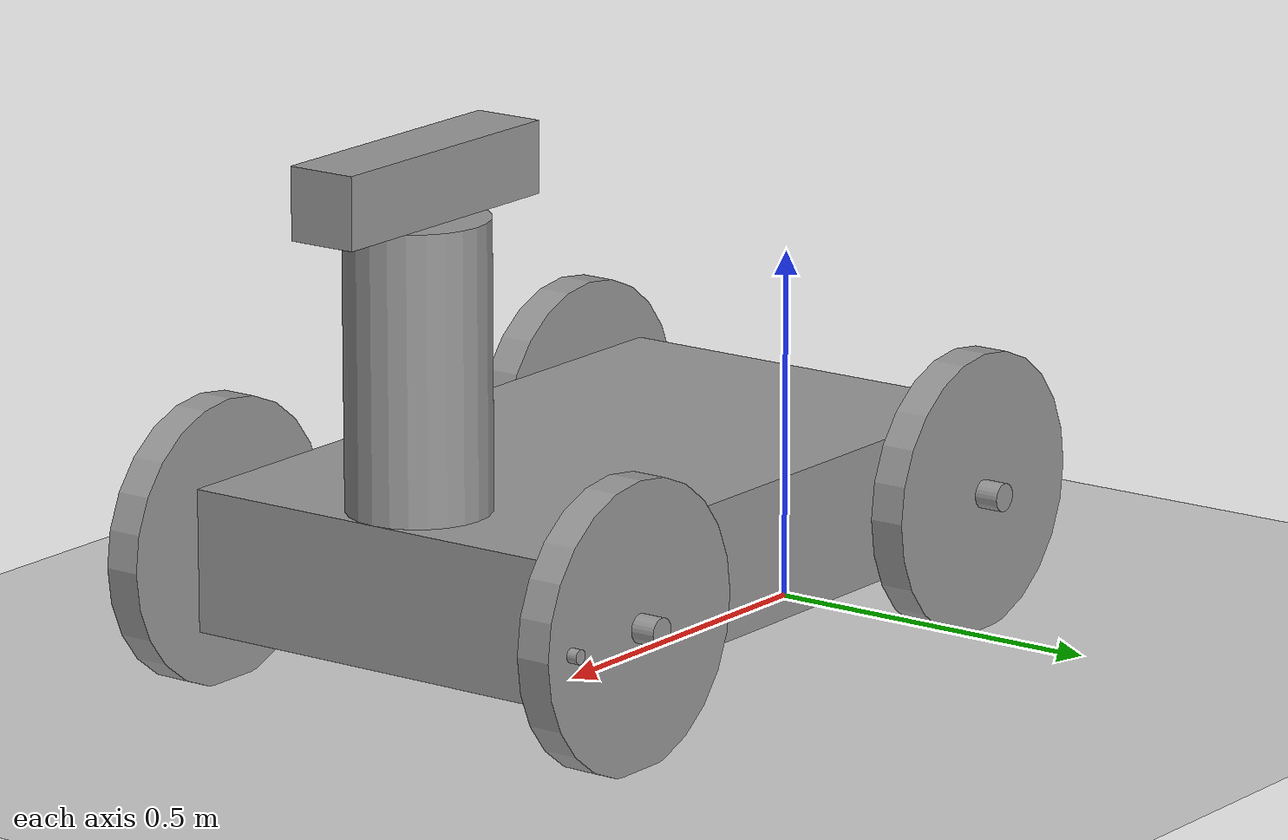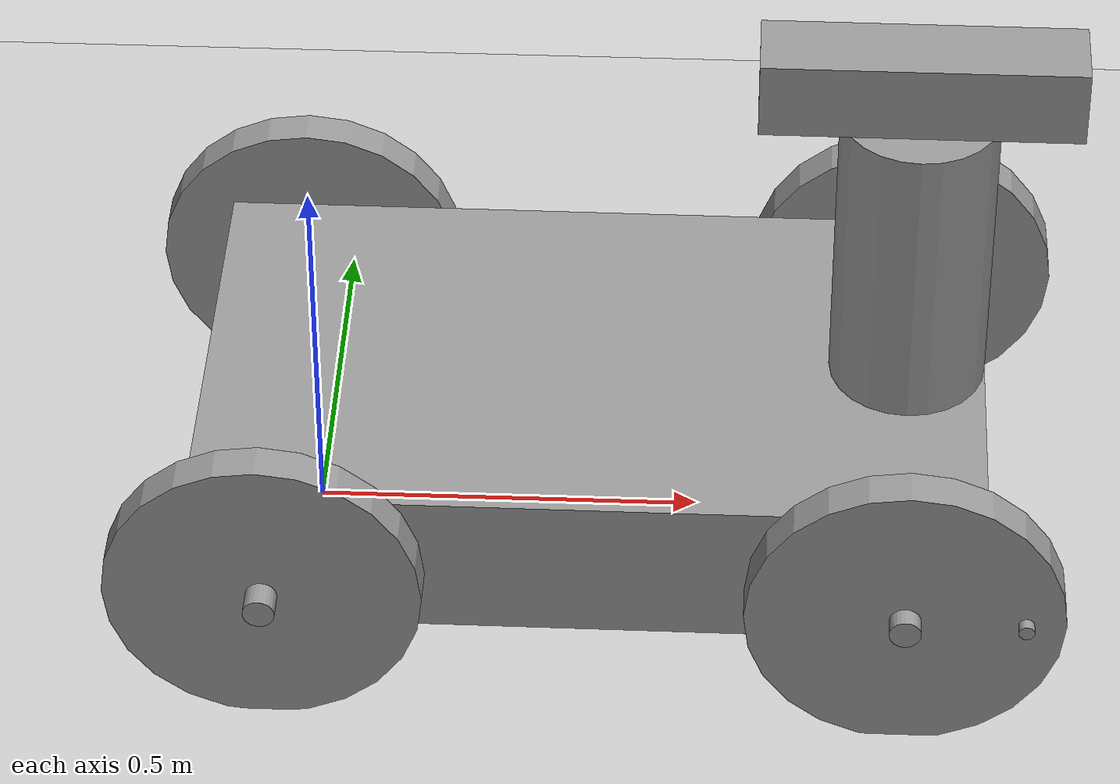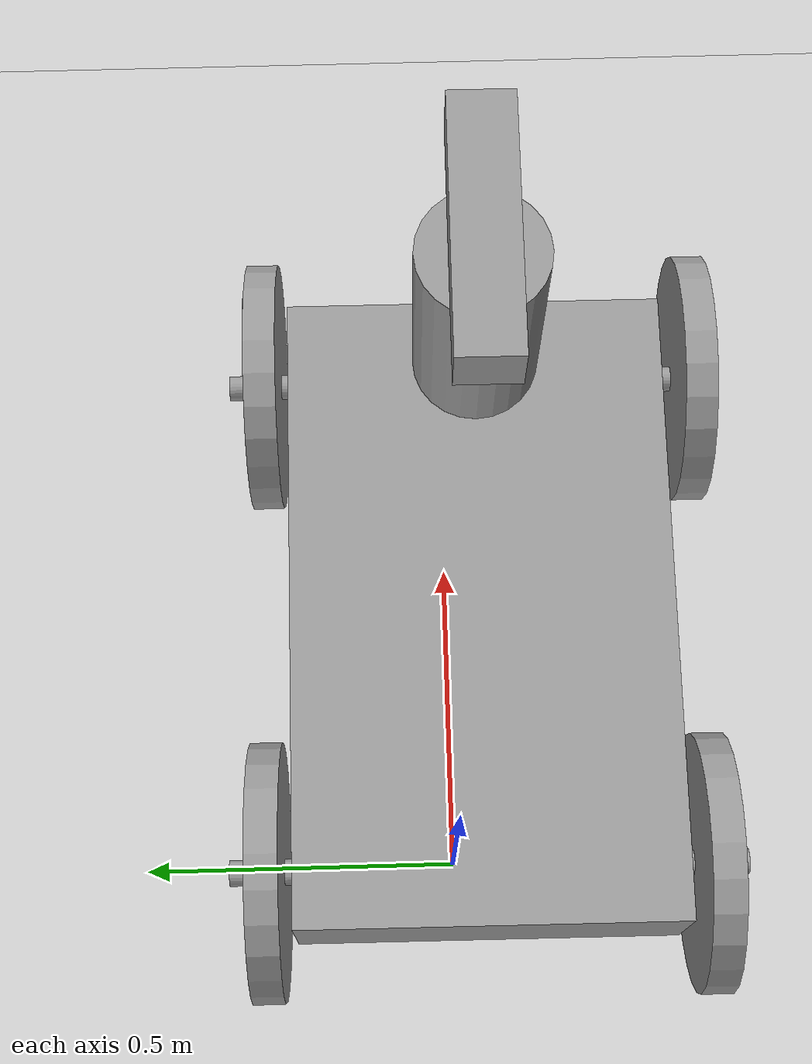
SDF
<sdf version="1.6">
 <world name="default">
  <light name="sun" type="directional">
   <pose>0 0 10 0 -0 0</pose>
   <diffuse>0.8 0.8 0.8 1</diffuse>
   <specular>0.2 0.2 0.2 1</specular>
   <attenuation>
    <range>1000</range>
    <constant>0.9</constant>
    <linear>0.01</linear>
    <quadratic>0.001</quadratic>
   </attenuation>
   <direction>-0.5 0.1 -0.9</direction>
  </light>
  <model name="ground_plane">
   <static>1</static>
   <link name="link">
    <collision name="collision">
     <geometry><plane><normal>0 0 1</normal><size>100 100</size></plane></geometry>
     <surface><friction><ode><mu>100</mu><mu2>50</mu2></ode></friction></surface>
    </collision>
    <visual name="visual">
     <cast_shadows>0</cast_shadows>
     <geometry><plane><normal>0 0 1</normal><size>100 100</size></plane></geometry>
     <material>
      <script><uri>file://media/materials/scripts/gazebo.material</uri><name>Gazebo/Grey</name></script>
     </material>
    </visual>
   </link>
  </model>
  <gravity>0 0 -9.8</gravity>
  <magnetic_field>6e-06 2.3e-05 -4.2e-05</magnetic_field>
  <atmosphere type="adiabatic"/>
  <physics name="default_physics" default="0" type="ode">
   <max_step_size>0.001</max_step_size>
   <real_time_factor>1</real_time_factor>
   <real_time_update_rate>1000</real_time_update_rate>
  </physics>
  <scene><ambient>0.4 0.4 0.4 1</ambient><background>0.7 0.7 0.7 1</background><shadows>1</shadows></scene>
  <audio><device>default</device></audio>
  <spherical_coordinates>
   <surface_model>EARTH_WGS84</surface_model>
   <latitude_deg>0</latitude_deg>
   <longitude_deg>0</longitude_deg>
   <elevation>0</elevation>
   <heading_deg>0</heading_deg>
  </spherical_coordinates>
  <model name="wheel_2x2">
   <link name="link_0">
    <inertial>
     <mass>10</mass>
     <inertia>
      <ixx>0.333333</ixx>
      <ixy>0</ixy>
      <ixz>0</ixz>
      <iyy>0.866667</iyy>
      <iyz>0</iyz>
      <izz>1.13333</izz>
     </inertia>
    </inertial>
    <pose>0.477804 0.110504 0.430964 0 -0 0</pose>
    <visual name="visual">
     <geometry><box><size>1 0.6 0.2</size></box></geometry>
     <material>
      <lighting>1</lighting>
      <script><uri>file://media/materials/scripts/gazebo.material</uri><name>Gazebo/Grey</name></script>
      <shader type="vertex"><normal_map>__default__</normal_map></shader>
      <ambient>0.3 0.3 0.3 1</ambient>
      <diffuse>0.7 0.7 0.7 1</diffuse>
      <specular>0.01 0.01 0.01 1</specular>
      <emissive>0 0 0 1</emissive>
     </material>
    </visual>
    <collision name="collision">
     <geometry><box><size>1 0.6 0.2</size></box></geometry>
     <surface>
      <friction>
       <ode><mu>1</mu><mu2>1</mu2><fdir1>0 0 0</fdir1><slip1>0</slip1><slip2>0</slip2></ode>
       <torsional>
        <coefficient>1</coefficient>
        <patch_radius>0</patch_radius>
        <surface_radius>0</surface_radius>
        <use_patch_radius>1</use_patch_radius>
        <ode><slip>0</slip></ode>
       </torsional>
      </friction>
      <bounce><restitution_coefficient>0</restitution_coefficient><threshold>1e+06</threshold></bounce>
      <contact>
       <collide_without_contact>0</collide_without_contact>
       <collide_without_contact_bitmask>1</collide_without_contact_bitmask>
       <collide_bitmask>1</collide_bitmask>
       <ode>
        <soft_cfm>0</soft_cfm>
        <soft_erp>0.2</soft_erp>
        <kp>1e+13</kp>
        <kd>1</kd>
        <max_vel>0.01</max_vel>
        <min_depth>0</min_depth>
       </ode>
       <bullet>
        <split_impulse>1</split_impulse>
        <split_impulse_penetration_threshold>-0.01</split_impulse_penetration_threshold>
        <soft_cfm>0</soft_cfm>
        <soft_erp>0.2</soft_erp>
        <kp>1e+13</kp>
        <kd>1</kd>
       </bullet>
      </contact>
     </surface>
    </collision>
   </link>
   <link name="link_2">
    <inertial>
     <mass>1</mass>
     <inertia><ixx>0.145833</ixx><ixy>0</ixy><ixz>0</ixz><iyy>0.145833</iyy><iyz>0</iyz><izz>0.125</izz></inertia>
    </inertial>
    <pose>0.877804 0.110504 0.730964 0 -0 0</pose>
    <visual name="visual">
     <geometry><cylinder><radius>0.1</radius><length>0.4</length></cylinder></geometry>
     <material>
      <lighting>1</lighting>
      <script><uri>file://media/materials/scripts/gazebo.material</uri><name>Gazebo/Grey</name></script>
      <shader type="vertex"><normal_map>__default__</normal_map></shader>
      <ambient>0.3 0.3 0.3 1</ambient>
      <diffuse>0.7 0.7 0.7 1</diffuse>
      <specular>0.01 0.01 0.01 1</specular>
      <emissive>0 0 0 1</emissive>
     </material>
    </visual>
    <collision name="collision">
     <geometry><cylinder><radius>0.1</radius><length>0.4</length></cylinder></geometry>
     <surface>
      <friction>
       <ode><mu>1</mu><mu2>1</mu2><fdir1>0 0 0</fdir1><slip1>0</slip1><slip2>0</slip2></ode>
       <torsional>
        <coefficient>1</coefficient>
        <patch_radius>0</patch_radius>
        <surface_radius>0</surface_radius>
        <use_patch_radius>1</use_patch_radius>
        <ode><slip>0</slip></ode>
       </torsional>
      </friction>
      <bounce><restitution_coefficient>0</restitution_coefficient><threshold>1e+06</threshold></bounce>
      <contact>
       <collide_without_contact>0</collide_without_contact>
       <collide_without_contact_bitmask>1</collide_without_contact_bitmask>
       <collide_bitmask>1</collide_bitmask>
       <ode>
        <soft_cfm>0</soft_cfm>
        <soft_erp>0.2</soft_erp>
        <kp>1e+13</kp>
        <kd>1</kd>
        <max_vel>0.01</max_vel>
        <min_depth>0</min_depth>
       </ode>
       <bullet>
        <split_impulse>1</split_impulse>
        <split_impulse_penetration_threshold>-0.01</split_impulse_penetration_threshold>
        <soft_cfm>0</soft_cfm>
        <soft_erp>0.2</soft_erp>
        <kp>1e+13</kp>
        <kd>1</kd>
       </bullet>
      </contact>
     </surface>
    </collision>
   </link>
   <link name="link_3">
    <inertial>
     <mass>0.2</mass>
     <inertia>
      <ixx>0.00033333</ixx>
      <ixy>0</ixy>
      <ixz>0</ixz>
      <iyy>0.00283333</iyy>
      <iyz>0</iyz>
      <izz>0.00283333</izz>
     </inertia>
    </inertial>
    <pose>0.877804 0.110504 0.980964 0 -0 0</pose>
    <visual name="visual">
     <geometry><box><size>0.4 0.1 0.1</size></box></geometry>
     <material>
      <lighting>1</lighting>
      <script><uri>file://media/materials/scripts/gazebo.material</uri><name>Gazebo/Grey</name></script>
      <shader type="vertex"><normal_map>__default__</normal_map></shader>
      <ambient>0.3 0.3 0.3 1</ambient>
      <diffuse>0.7 0.7 0.7 1</diffuse>
      <specular>0.01 0.01 0.01 1</specular>
      <emissive>0 0 0 1</emissive>
     </material>
    </visual>
    <collision name="collision">
     <geometry><box><size>0.4 0.1 0.1</size></box></geometry>
     <surface>
      <friction>
       <ode><mu>1</mu><mu2>1</mu2><fdir1>0 0 0</fdir1><slip1>0</slip1><slip2>0</slip2></ode>
       <torsional>
        <coefficient>1</coefficient>
        <patch_radius>0</patch_radius>
        <surface_radius>0</surface_radius>
        <use_patch_radius>1</use_patch_radius>
        <ode><slip>0</slip></ode>
       </torsional>
      </friction>
      <bounce><restitution_coefficient>0</restitution_coefficient><threshold>1e+06</threshold></bounce>
      <contact>
       <collide_without_contact>0</collide_without_contact>
       <collide_without_contact_bitmask>1</collide_without_contact_bitmask>
       <collide_bitmask>1</collide_bitmask>
       <ode>
        <soft_cfm>0</soft_cfm>
        <soft_erp>0.2</soft_erp>
        <kp>1e+13</kp>
        <kd>1</kd>
        <max_vel>0.01</max_vel>
        <min_depth>0</min_depth>
       </ode>
       <bullet>
        <split_impulse>1</split_impulse>
        <split_impulse_penetration_threshold>-0.01</split_impulse_penetration_threshold>
        <soft_cfm>0</soft_cfm>
        <soft_erp>0.2</soft_erp>
        <kp>1e+13</kp>
        <kd>1</kd>
       </bullet>
      </contact>
     </surface>
    </collision>
   </link>
   <link name="link_4">
    <inertial>
     <mass>0.1</mass>
     <inertia>
      <ixx>0.00034333</ixx>
      <ixy>0</ixy>
      <ixz>0</ixz>
      <iyy>0.00034333</iyy>
      <iyz>0</iyz>
      <izz>2e-05</izz>
     </inertia>
    </inertial>
    <pose>0.877804 -0.189495 0.430964 1.5708 -0 0</pose>
    <visual name="visual">
     <geometry><cylinder><radius>0.02</radius><length>0.2</length></cylinder></geometry>
     <material>
      <lighting>1</lighting>
      <script><uri>file://media/materials/scripts/gazebo.material</uri><name>Gazebo/Grey</name></script>
      <shader type="vertex"><normal_map>__default__</normal_map></shader>
      <ambient>0.3 0.3 0.3 1</ambient>
      <diffuse>0.7 0.7 0.7 1</diffuse>
      <specular>0.01 0.01 0.01 1</specular>
      <emissive>0 0 0 1</emissive>
     </material>
    </visual>
    <collision name="collision">
     <geometry><cylinder><radius>0.02</radius><length>0.2</length></cylinder></geometry>
     <surface>
      <friction>
       <ode><mu>1</mu><mu2>1</mu2><fdir1>0 0 0</fdir1><slip1>0</slip1><slip2>0</slip2></ode>
       <torsional>
        <coefficient>1</coefficient>
        <patch_radius>0</patch_radius>
        <surface_radius>0</surface_radius>
        <use_patch_radius>1</use_patch_radius>
        <ode><slip>0</slip></ode>
       </torsional>
      </friction>
      <bounce><restitution_coefficient>0</restitution_coefficient><threshold>1e+06</threshold></bounce>
      <contact>
       <collide_without_contact>0</collide_without_contact>
       <collide_without_contact_bitmask>1</collide_without_contact_bitmask>
       <collide_bitmask>1</collide_bitmask>
       <ode>
        <soft_cfm>0</soft_cfm>
        <soft_erp>0.2</soft_erp>
        <kp>1e+13</kp>
        <kd>1</kd>
        <max_vel>0.01</max_vel>
        <min_depth>0</min_depth>
       </ode>
       <bullet>
        <split_impulse>1</split_impulse>
        <split_impulse_penetration_threshold>-0.01</split_impulse_penetration_threshold>
        <soft_cfm>0</soft_cfm>
        <soft_erp>0.2</soft_erp>
        <kp>1e+13</kp>
        <kd>1</kd>
       </bullet>
      </contact>
     </surface>
    </collision>
   </link>
   <link name="link_4_clone">
    <inertial>
     <mass>0.1</mass>
     <inertia>
      <ixx>0.00034333</ixx>
      <ixy>0</ixy>
      <ixz>0</ixz>
      <iyy>0.00034333</iyy>
      <iyz>0</iyz>
      <izz>2e-05</izz>
     </inertia>
    </inertial>
    <pose>0.877804 0.410504 0.430964 -1.5708 0 0</pose>
    <visual name="visual">
     <geometry><cylinder><radius>0.02</radius><length>0.2</length></cylinder></geometry>
     <material>
      <lighting>1</lighting>
      <script><uri>file://media/materials/scripts/gazebo.material</uri><name>Gazebo/Grey</name></script>
      <shader type="vertex"><normal_map>__default__</normal_map></shader>
      <ambient>0.3 0.3 0.3 1</ambient>
      <diffuse>0.7 0.7 0.7 1</diffuse>
      <specular>0.01 0.01 0.01 1</specular>
      <emissive>0 0 0 1</emissive>
     </material>
    </visual>
    <collision name="collision">
     <geometry><cylinder><radius>0.02</radius><length>0.2</length></cylinder></geometry>
     <surface>
      <friction>
       <ode><mu>1</mu><mu2>1</mu2><fdir1>0 0 0</fdir1><slip1>0</slip1><slip2>0</slip2></ode>
       <torsional>
        <coefficient>1</coefficient>
        <patch_radius>0</patch_radius>
        <surface_radius>0</surface_radius>
        <use_patch_radius>1</use_patch_radius>
        <ode><slip>0</slip></ode>
       </torsional>
      </friction>
      <bounce><restitution_coefficient>0</restitution_coefficient><threshold>1e+06</threshold></bounce>
      <contact>
       <collide_without_contact>0</collide_without_contact>
       <collide_without_contact_bitmask>1</collide_without_contact_bitmask>
       <collide_bitmask>1</collide_bitmask>
       <ode>
        <soft_cfm>0</soft_cfm>
        <soft_erp>0.2</soft_erp>
        <kp>1e+13</kp>
        <kd>1</kd>
        <max_vel>0.01</max_vel>
        <min_depth>0</min_depth>
       </ode>
       <bullet>
        <split_impulse>1</split_impulse>
        <split_impulse_penetration_threshold>-0.01</split_impulse_penetration_threshold>
        <soft_cfm>0</soft_cfm>
        <soft_erp>0.2</soft_erp>
        <kp>1e+13</kp>
        <kd>1</kd>
       </bullet>
      </contact>
     </surface>
    </collision>
   </link>
   <link name="link_4_clone_0">
    <inertial>
     <mass>0.1</mass>
     <inertia>
      <ixx>0.00034333</ixx>
      <ixy>0</ixy>
      <ixz>0</ixz>
      <iyy>0.00034333</iyy>
      <iyz>0</iyz>
      <izz>2e-05</izz>
     </inertia>
    </inertial>
    <pose>0.077804 -0.189496 0.430964 1.5708 -0 0</pose>
    <visual name="visual">
     <geometry><cylinder><radius>0.02</radius><length>0.2</length></cylinder></geometry>
     <material>
      <lighting>1</lighting>
      <script><uri>file://media/materials/scripts/gazebo.material</uri><name>Gazebo/Grey</name></script>
      <shader type="vertex"><normal_map>__default__</normal_map></shader>
      <ambient>0.3 0.3 0.3 1</ambient>
      <diffuse>0.7 0.7 0.7 1</diffuse>
      <specular>0.01 0.01 0.01 1</specular>
      <emissive>0 0 0 1</emissive>
     </material>
    </visual>
    <collision name="collision">
     <geometry><cylinder><radius>0.02</radius><length>0.2</length></cylinder></geometry>
     <surface>
      <friction>
       <ode><mu>1</mu><mu2>1</mu2><fdir1>0 0 0</fdir1><slip1>0</slip1><slip2>0</slip2></ode>
       <torsional>
        <coefficient>1</coefficient>
        <patch_radius>0</patch_radius>
        <surface_radius>0</surface_radius>
        <use_patch_radius>1</use_patch_radius>
        <ode><slip>0</slip></ode>
       </torsional>
      </friction>
      <bounce><restitution_coefficient>0</restitution_coefficient><threshold>1e+06</threshold></bounce>
      <contact>
       <collide_without_contact>0</collide_without_contact>
       <collide_without_contact_bitmask>1</collide_without_contact_bitmask>
       <collide_bitmask>1</collide_bitmask>
       <ode>
        <soft_cfm>0</soft_cfm>
        <soft_erp>0.2</soft_erp>
        <kp>1e+13</kp>
        <kd>1</kd>
        <max_vel>0.01</max_vel>
        <min_depth>0</min_depth>
       </ode>
       <bullet>
        <split_impulse>1</split_impulse>
        <split_impulse_penetration_threshold>-0.01</split_impulse_penetration_threshold>
        <soft_cfm>0</soft_cfm>
        <soft_erp>0.2</soft_erp>
        <kp>1e+13</kp>
        <kd>1</kd>
       </bullet>
      </contact>
     </surface>
    </collision>
   </link>
   <link name="link_4_clone_clone">
    <inertial>
     <mass>0.1</mass>
     <inertia>
      <ixx>0.00034333</ixx>
      <ixy>0</ixy>
      <ixz>0</ixz>
      <iyy>0.00034333</iyy>
      <iyz>0</iyz>
      <izz>2e-05</izz>
     </inertia>
    </inertial>
    <pose>0.077804 0.410504 0.430964 -1.5708 0 0</pose>
    <visual name="visual">
     <geometry><cylinder><radius>0.02</radius><length>0.2</length></cylinder></geometry>
     <material>
      <lighting>1</lighting>
      <script><uri>file://media/materials/scripts/gazebo.material</uri><name>Gazebo/Grey</name></script>
      <shader type="vertex"><normal_map>__default__</normal_map></shader>
      <ambient>0.3 0.3 0.3 1</ambient>
      <diffuse>0.7 0.7 0.7 1</diffuse>
      <specular>0.01 0.01 0.01 1</specular>
      <emissive>0 0 0 1</emissive>
     </material>
    </visual>
    <collision name="collision">
     <geometry><cylinder><radius>0.02</radius><length>0.2</length></cylinder></geometry>
     <surface>
      <friction>
       <ode><mu>1</mu><mu2>1</mu2><fdir1>0 0 0</fdir1><slip1>0</slip1><slip2>0</slip2></ode>
       <torsional>
        <coefficient>1</coefficient>
        <patch_radius>0</patch_radius>
        <surface_radius>0</surface_radius>
        <use_patch_radius>1</use_patch_radius>
        <ode><slip>0</slip></ode>
       </torsional>
      </friction>
      <bounce><restitution_coefficient>0</restitution_coefficient><threshold>1e+06</threshold></bounce>
      <contact>
       <collide_without_contact>0</collide_without_contact>
       <collide_without_contact_bitmask>1</collide_without_contact_bitmask>
       <collide_bitmask>1</collide_bitmask>
       <ode>
        <soft_cfm>0</soft_cfm>
        <soft_erp>0.2</soft_erp>
        <kp>1e+13</kp>
        <kd>1</kd>
        <max_vel>0.01</max_vel>
        <min_depth>0</min_depth>
       </ode>
       <bullet>
        <split_impulse>1</split_impulse>
        <split_impulse_penetration_threshold>-0.01</split_impulse_penetration_threshold>
        <soft_cfm>0</soft_cfm>
        <soft_erp>0.2</soft_erp>
        <kp>1e+13</kp>
        <kd>1</kd>
       </bullet>
      </contact>
     </surface>
    </collision>
   </link>
   <link name="link_5">
    <inertial>
     <mass>0.5</mass>
     <inertia>
      <ixx>0.00510417</ixx>
      <ixy>0</ixy>
      <ixz>0</ixz>
      <iyy>0.00510417</iyy>
      <iyz>0</iyz>
      <izz>0.01</izz>
     </inertia>
    </inertial>
    <pose>0.877804 -0.239495 0.430964 1.5708 -0 0</pose>
    <visual name="visual">
     <geometry><cylinder><radius>0.2</radius><length>0.05</length></cylinder></geometry>
     <material>
      <lighting>1</lighting>
      <script><uri>file://media/materials/scripts/gazebo.material</uri><name>Gazebo/Grey</name></script>
      <shader type="vertex"><normal_map>__default__</normal_map></shader>
      <ambient>0.3 0.3 0.3 1</ambient>
      <diffuse>0.7 0.7 0.7 1</diffuse>
      <specular>0.01 0.01 0.01 1</specular>
      <emissive>0 0 0 1</emissive>
     </material>
    </visual>
    <collision name="collision">
     <geometry><cylinder><radius>0.2</radius><length>0.05</length></cylinder></geometry>
     <surface>
      <friction>
       <ode><mu>1</mu><mu2>1</mu2><fdir1>0 0 0</fdir1><slip1>0</slip1><slip2>0</slip2></ode>
       <torsional>
        <coefficient>1</coefficient>
        <patch_radius>0</patch_radius>
        <surface_radius>0</surface_radius>
        <use_patch_radius>1</use_patch_radius>
        <ode><slip>0</slip></ode>
       </torsional>
      </friction>
      <bounce><restitution_coefficient>0</restitution_coefficient><threshold>1e+06</threshold></bounce>
      <contact>
       <collide_without_contact>0</collide_without_contact>
       <collide_without_contact_bitmask>1</collide_without_contact_bitmask>
       <collide_bitmask>1</collide_bitmask>
       <ode>
        <soft_cfm>0</soft_cfm>
        <soft_erp>0.2</soft_erp>
        <kp>1e+13</kp>
        <kd>1</kd>
        <max_vel>0.01</max_vel>
        <min_depth>0</min_depth>
       </ode>
       <bullet>
        <split_impulse>1</split_impulse>
        <split_impulse_penetration_threshold>-0.01</split_impulse_penetration_threshold>
        <soft_cfm>0</soft_cfm>
        <soft_erp>0.2</soft_erp>
        <kp>1e+13</kp>
        <kd>1</kd>
       </bullet>
      </contact>
     </surface>
    </collision>
   </link>
   <link name="link_5_clone">
    <inertial>
     <mass>0.5</mass>
     <inertia>
      <ixx>0.00510417</ixx>
      <ixy>0</ixy>
      <ixz>0</ixz>
      <iyy>0.00510417</iyy>
      <iyz>0</iyz>
      <izz>0.01</izz>
     </inertia>
    </inertial>
    <pose>0.077804 -0.229496 0.430964 1.5708 -0 0</pose>
    <visual name="visual">
     <geometry><cylinder><radius>0.2</radius><length>0.05</length></cylinder></geometry>
     <material>
      <lighting>1</lighting>
      <script><uri>file://media/materials/scripts/gazebo.material</uri><name>Gazebo/Grey</name></script>
      <shader type="vertex"><normal_map>__default__</normal_map></shader>
      <ambient>0.3 0.3 0.3 1</ambient>
      <diffuse>0.7 0.7 0.7 1</diffuse>
      <specular>0.01 0.01 0.01 1</specular>
      <emissive>0 0 0 1</emissive>
     </material>
    </visual>
    <collision name="collision">
     <geometry><cylinder><radius>0.2</radius><length>0.05</length></cylinder></geometry>
     <surface>
      <friction>
       <ode><mu>1</mu><mu2>1</mu2><fdir1>0 0 0</fdir1><slip1>0</slip1><slip2>0</slip2></ode>
       <torsional>
        <coefficient>1</coefficient>
        <patch_radius>0</patch_radius>
        <surface_radius>0</surface_radius>
        <use_patch_radius>1</use_patch_radius>
        <ode><slip>0</slip></ode>
       </torsional>
      </friction>
      <bounce><restitution_coefficient>0</restitution_coefficient><threshold>1e+06</threshold></bounce>
      <contact>
       <collide_without_contact>0</collide_without_contact>
       <collide_without_contact_bitmask>1</collide_without_contact_bitmask>
       <collide_bitmask>1</collide_bitmask>
       <ode>
        <soft_cfm>0</soft_cfm>
        <soft_erp>0.2</soft_erp>
        <kp>1e+13</kp>
        <kd>1</kd>
        <max_vel>0.01</max_vel>
        <min_depth>0</min_depth>
       </ode>
       <bullet>
        <split_impulse>1</split_impulse>
        <split_impulse_penetration_threshold>-0.01</split_impulse_penetration_threshold>
        <soft_cfm>0</soft_cfm>
        <soft_erp>0.2</soft_erp>
        <kp>1e+13</kp>
        <kd>1</kd>
       </bullet>
      </contact>
     </surface>
    </collision>
   </link>
   <link name="link_5_clone_0">
    <inertial>
     <mass>0.5</mass>
     <inertia>
      <ixx>0.00510417</ixx>
      <ixy>0</ixy>
      <ixz>0</ixz>
      <iyy>0.00510417</iyy>
      <iyz>0</iyz>
      <izz>0.01</izz>
     </inertia>
    </inertial>
    <pose>0.877804 0.450504 0.430964 -1.5708 0 0</pose>
    <visual name="visual">
     <geometry><cylinder><radius>0.2</radius><length>0.05</length></cylinder></geometry>
     <material>
      <lighting>1</lighting>
      <script><uri>file://media/materials/scripts/gazebo.material</uri><name>Gazebo/Grey</name></script>
      <shader type="vertex"><normal_map>__default__</normal_map></shader>
      <ambient>0.3 0.3 0.3 1</ambient>
      <diffuse>0.7 0.7 0.7 1</diffuse>
      <specular>0.01 0.01 0.01 1</specular>
      <emissive>0 0 0 1</emissive>
     </material>
    </visual>
    <collision name="collision">
     <geometry><cylinder><radius>0.2</radius><length>0.05</length></cylinder></geometry>
     <surface>
      <friction>
       <ode><mu>1</mu><mu2>1</mu2><fdir1>0 0 0</fdir1><slip1>0</slip1><slip2>0</slip2></ode>
       <torsional>
        <coefficient>1</coefficient>
        <patch_radius>0</patch_radius>
        <surface_radius>0</surface_radius>
        <use_patch_radius>1</use_patch_radius>
        <ode><slip>0</slip></ode>
       </torsional>
      </friction>
      <bounce><restitution_coefficient>0</restitution_coefficient><threshold>1e+06</threshold></bounce>
      <contact>
       <collide_without_contact>0</collide_without_contact>
       <collide_without_contact_bitmask>1</collide_without_contact_bitmask>
       <collide_bitmask>1</collide_bitmask>
       <ode>
        <soft_cfm>0</soft_cfm>
        <soft_erp>0.2</soft_erp>
        <kp>1e+13</kp>
        <kd>1</kd>
        <max_vel>0.01</max_vel>
        <min_depth>0</min_depth>
       </ode>
       <bullet>
        <split_impulse>1</split_impulse>
        <split_impulse_penetration_threshold>-0.01</split_impulse_penetration_threshold>
        <soft_cfm>0</soft_cfm>
        <soft_erp>0.2</soft_erp>
        <kp>1e+13</kp>
        <kd>1</kd>
       </bullet>
      </contact>
     </surface>
    </collision>
   </link>
   <link name="link_5_clone_0_clone">
    <inertial>
     <mass>0.5</mass>
     <inertia>
      <ixx>0.00510417</ixx>
      <ixy>0</ixy>
      <ixz>0</ixz>
      <iyy>0.00510417</iyy>
      <iyz>0</iyz>
      <izz>0.01</izz>
     </inertia>
    </inertial>
    <pose>0.077804 0.450504 0.430964 -1.5708 0 0</pose>
    <visual name="visual">
     <geometry><cylinder><radius>0.2</radius><length>0.05</length></cylinder></geometry>
     <material>
      <lighting>1</lighting>
      <script><uri>file://media/materials/scripts/gazebo.material</uri><name>Gazebo/Grey</name></script>
      <shader type="vertex"><normal_map>__default__</normal_map></shader>
      <ambient>0.3 0.3 0.3 1</ambient>
      <diffuse>0.7 0.7 0.7 1</diffuse>
      <specular>0.01 0.01 0.01 1</specular>
      <emissive>0 0 0 1</emissive>
     </material>
    </visual>
    <collision name="collision">
     <geometry><cylinder><radius>0.2</radius><length>0.05</length></cylinder></geometry>
     <surface>
      <friction>
       <ode><mu>1</mu><mu2>1</mu2><fdir1>0 0 0</fdir1><slip1>0</slip1><slip2>0</slip2></ode>
       <torsional>
        <coefficient>1</coefficient>
        <patch_radius>0</patch_radius>
        <surface_radius>0</surface_radius>
        <use_patch_radius>1</use_patch_radius>
        <ode><slip>0</slip></ode>
       </torsional>
      </friction>
      <bounce><restitution_coefficient>0</restitution_coefficient><threshold>1e+06</threshold></bounce>
      <contact>
       <collide_without_contact>0</collide_without_contact>
       <collide_without_contact_bitmask>1</collide_without_contact_bitmask>
       <collide_bitmask>1</collide_bitmask>
       <ode>
        <soft_cfm>0</soft_cfm>
        <soft_erp>0.2</soft_erp>
        <kp>1e+13</kp>
        <kd>1</kd>
        <max_vel>0.01</max_vel>
        <min_depth>0</min_depth>
       </ode>
       <bullet>
        <split_impulse>1</split_impulse>
        <split_impulse_penetration_threshold>-0.01</split_impulse_penetration_threshold>
        <soft_cfm>0</soft_cfm>
        <soft_erp>0.2</soft_erp>
        <kp>1e+13</kp>
        <kd>1</kd>
       </bullet>
      </contact>
     </surface>
    </collision>
   </link>
   <link name="link_6">
    <inertial>
     <mass>0.1</mass>
     <inertia><ixx>5.83e-06</ixx><ixy>0</ixy><ixz>0</ixz><iyy>5.83e-06</iyy><iyz>0</iyz><izz>5e-06</izz></inertia>
    </inertial>
    <pose>1.0278 -0.269495 0.430964 1.5708 -0 0</pose>
    <visual name="visual">
     <geometry><cylinder><radius>0.01</radius><length>0.02</length></cylinder></geometry>
     <material>
      <lighting>1</lighting>
      <script><uri>file://media/materials/scripts/gazebo.material</uri><name>Gazebo/Grey</name></script>
      <shader type="vertex"><normal_map>__default__</normal_map></shader>
      <ambient>0.3 0.3 0.3 1</ambient>
      <diffuse>0.7 0.7 0.7 1</diffuse>
      <specular>0.01 0.01 0.01 1</specular>
      <emissive>0 0 0 1</emissive>
     </material>
    </visual>
    <collision name="collision">
     <geometry><cylinder><radius>0.01</radius><length>0.02</length></cylinder></geometry>
     <surface>
      <friction>
       <ode><mu>1</mu><mu2>1</mu2><fdir1>0 0 0</fdir1><slip1>0</slip1><slip2>0</slip2></ode>
       <torsional>
        <coefficient>1</coefficient>
        <patch_radius>0</patch_radius>
        <surface_radius>0</surface_radius>
        <use_patch_radius>1</use_patch_radius>
        <ode><slip>0</slip></ode>
       </torsional>
      </friction>
      <bounce><restitution_coefficient>0</restitution_coefficient><threshold>1e+06</threshold></bounce>
      <contact>
       <collide_without_contact>0</collide_without_contact>
       <collide_without_contact_bitmask>1</collide_without_contact_bitmask>
       <collide_bitmask>1</collide_bitmask>
       <ode>
        <soft_cfm>0</soft_cfm>
        <soft_erp>0.2</soft_erp>
        <kp>1e+13</kp>
        <kd>1</kd>
        <max_vel>0.01</max_vel>
        <min_depth>0</min_depth>
       </ode>
       <bullet>
        <split_impulse>1</split_impulse>
        <split_impulse_penetration_threshold>-0.01</split_impulse_penetration_threshold>
        <soft_cfm>0</soft_cfm>
        <soft_erp>0.2</soft_erp>
        <kp>1e+13</kp>
        <kd>1</kd>
       </bullet>
      </contact>
     </surface>
    </collision>
   </link>
   <link name="link_6_clone">
    <inertial>
     <mass>0.1</mass>
     <inertia><ixx>5.83e-06</ixx><ixy>0</ixy><ixz>0</ixz><iyy>5.83e-06</iyy><iyz>0</iyz><izz>5e-06</izz></inertia>
    </inertial>
    <pose>1.0278 0.480504 0.430964 -1.5708 0 0</pose>
    <visual name="visual">
     <geometry><cylinder><radius>0.01</radius><length>0.02</length></cylinder></geometry>
     <material>
      <lighting>1</lighting>
      <script><uri>file://media/materials/scripts/gazebo.material</uri><name>Gazebo/Grey</name></script>
      <shader type="vertex"><normal_map>__default__</normal_map></shader>
      <ambient>0.3 0.3 0.3 1</ambient>
      <diffuse>0.7 0.7 0.7 1</diffuse>
      <specular>0.01 0.01 0.01 1</specular>
      <emissive>0 0 0 1</emissive>
     </material>
    </visual>
    <collision name="collision">
     <geometry><cylinder><radius>0.01</radius><length>0.02</length></cylinder></geometry>
     <surface>
      <friction>
       <ode><mu>1</mu><mu2>1</mu2><fdir1>0 0 0</fdir1><slip1>0</slip1><slip2>0</slip2></ode>
       <torsional>
        <coefficient>1</coefficient>
        <patch_radius>0</patch_radius>
        <surface_radius>0</surface_radius>
        <use_patch_radius>1</use_patch_radius>
        <ode><slip>0</slip></ode>
       </torsional>
      </friction>
      <bounce><restitution_coefficient>0</restitution_coefficient><threshold>1e+06</threshold></bounce>
      <contact>
       <collide_without_contact>0</collide_without_contact>
       <collide_without_contact_bitmask>1</collide_without_contact_bitmask>
       <collide_bitmask>1</collide_bitmask>
       <ode>
        <soft_cfm>0</soft_cfm>
        <soft_erp>0.2</soft_erp>
        <kp>1e+13</kp>
        <kd>1</kd>
        <max_vel>0.01</max_vel>
        <min_depth>0</min_depth>
       </ode>
       <bullet>
        <split_impulse>1</split_impulse>
        <split_impulse_penetration_threshold>-0.01</split_impulse_penetration_threshold>
        <soft_cfm>0</soft_cfm>
        <soft_erp>0.2</soft_erp>
        <kp>1e+13</kp>
        <kd>1</kd>
       </bullet>
      </contact>
     </surface>
    </collision>
   </link>
   <joint name="link_0_JOINT_0" type="fixed">
    <parent>link_0</parent>
    <child>link_2</child>
    <physics>
     <ode><limit><cfm>0</cfm><erp>0.2</erp></limit><suspension><cfm>0</cfm><erp>0.2</erp></suspension></ode>
    </physics>
   </joint>
   <joint name="link_0_JOINT_2" type="fixed">
    <parent>link_0</parent>
    <child>link_4</child>
    <physics>
     <ode><limit><cfm>0</cfm><erp>0.2</erp></limit><suspension><cfm>0</cfm><erp>0.2</erp></suspension></ode>
    </physics>
   </joint>
   <joint name="link_0_JOINT_3" type="fixed">
    <parent>link_0</parent>
    <child>link_4_clone</child>
    <physics>
     <ode><limit><cfm>0</cfm><erp>0.2</erp></limit><suspension><cfm>0</cfm><erp>0.2</erp></suspension></ode>
    </physics>
   </joint>
   <joint name="link_0_JOINT_4" type="fixed">
    <parent>link_0</parent>
    <child>link_4_clone_0</child>
    <physics>
     <ode><limit><cfm>0</cfm><erp>0.2</erp></limit><suspension><cfm>0</cfm><erp>0.2</erp></suspension></ode>
    </physics>
   </joint>
   <joint name="link_0_JOINT_5" type="fixed">
    <parent>link_0</parent>
    <child>link_4_clone_clone</child>
    <physics>
     <ode><limit><cfm>0</cfm><erp>0.2</erp></limit><suspension><cfm>0</cfm><erp>0.2</erp></suspension></ode>
    </physics>
   </joint>
   <joint name="link_2_JOINT_1" type="revolute">
    <parent>link_2</parent>
    <child>link_3</child>
    <axis>
     <xyz>0 0 1</xyz>
     <use_parent_model_frame>0</use_parent_model_frame>
     <limit>
      <lower>-1.79769e+308</lower>
      <upper>1.79769e+308</upper>
      <effort>-1</effort>
      <velocity>-1</velocity>
     </limit>
     <dynamics>
      <spring_reference>0</spring_reference>
      <spring_stiffness>0</spring_stiffness>
      <damping>0</damping>
     </dynamics>
    </axis>
    <physics>
     <ode><limit><cfm>0</cfm><erp>0.2</erp></limit><suspension><cfm>0</cfm><erp>0.2</erp></suspension></ode>
    </physics>
   </joint>
   <joint name="link_4_JOINT_6" type="revolute">
    <parent>link_4</parent>
    <child>link_5</child>
    <axis>
     <xyz>0 0 1</xyz>
     <use_parent_model_frame>0</use_parent_model_frame>
     <limit>
      <lower>-1.79769e+308</lower>
      <upper>1.79769e+308</upper>
      <effort>-1</effort>
      <velocity>-1</velocity>
     </limit>
     <dynamics>
      <spring_reference>0</spring_reference>
      <spring_stiffness>0</spring_stiffness>
      <damping>0</damping>
      <friction>0</friction>
     </dynamics>
    </axis>
    <physics>
     <ode><limit><cfm>0</cfm><erp>0.2</erp></limit><suspension><cfm>0</cfm><erp>0.2</erp></suspension></ode>
    </physics>
   </joint>
   <joint name="link_4_clone_0_JOINT_8" type="revolute">
    <parent>link_4_clone_0</parent>
    <child>link_5_clone</child>
    <axis>
     <xyz>0 0 1</xyz>
     <use_parent_model_frame>0</use_parent_model_frame>
     <limit><lower>-1e+16</lower><upper>1e+16</upper><effort>-1</effort><velocity>-1</velocity></limit>
     <dynamics>
      <spring_reference>0</spring_reference>
      <spring_stiffness>0</spring_stiffness>
      <damping>0</damping>
      <friction>0</friction>
     </dynamics>
    </axis>
    <physics>
     <ode><limit><cfm>0</cfm><erp>0.2</erp></limit><suspension><cfm>0</cfm><erp>0.2</erp></suspension></ode>
    </physics>
   </joint>
   <joint name="link_4_clone_JOINT_9" type="revolute">
    <parent>link_4_clone</parent>
    <child>link_5_clone_0</child>
    <axis>
     <xyz>0 0 1</xyz>
     <use_parent_model_frame>0</use_parent_model_frame>
     <limit><lower>-1e+16</lower><upper>1e+16</upper><effort>-1</effort><velocity>-1</velocity></limit>
     <dynamics>
      <spring_reference>0</spring_reference>
      <spring_stiffness>0</spring_stiffness>
      <damping>0</damping>
      <friction>0</friction>
     </dynamics>
    </axis>
    <physics>
     <ode><limit><cfm>0</cfm><erp>0.2</erp></limit><suspension><cfm>0</cfm><erp>0.2</erp></suspension></ode>
    </physics>
   </joint>
   <joint name="link_4_clone_clone_JOINT_10" type="revolute">
    <parent>link_4_clone_clone</parent>
    <child>link_5_clone_0_clone</child>
    <axis>
     <xyz>0 0 1</xyz>
     <use_parent_model_frame>0</use_parent_model_frame>
     <limit>
      <lower>-1.79769e+308</lower>
      <upper>1.79769e+308</upper>
      <effort>-1</effort>
      <velocity>-1</velocity>
     </limit>
     <dynamics>
      <spring_reference>0</spring_reference>
      <spring_stiffness>0</spring_stiffness>
      <damping>0</damping>
     </dynamics>
    </axis>
    <physics>
     <ode><limit><cfm>0</cfm><erp>0.2</erp></limit><suspension><cfm>0</cfm><erp>0.2</erp></suspension></ode>
    </physics>
   </joint>
   <joint name="link_5_JOINT_7" type="fixed">
    <parent>link_5</parent>
    <child>link_6</child>
    <physics>
     <ode><limit><cfm>0</cfm><erp>0.2</erp></limit><suspension><cfm>0</cfm><erp>0.2</erp></suspension></ode>
    </physics>
   </joint>
   <joint name="link_5_clone_0_JOINT_11" type="fixed">
    <parent>link_5_clone_0</parent>
    <child>link_6_clone</child>
    <physics>
     <ode><limit><cfm>0</cfm><erp>0.2</erp></limit><suspension><cfm>0</cfm><erp>0.2</erp></suspension></ode>
    </physics>
   </joint>
   <static>0</static>
   <pose>-0.110581 -0.160934 -0.236358 -4.4e-05 0.001693 -0.00222</pose>
  </model>
 </world>
</sdf>
